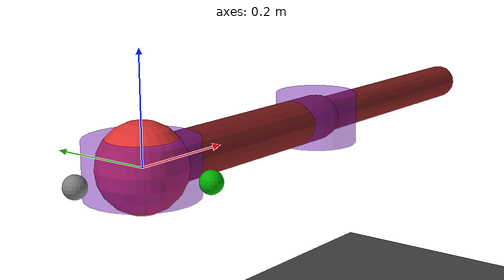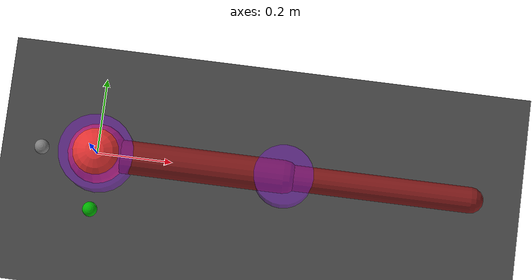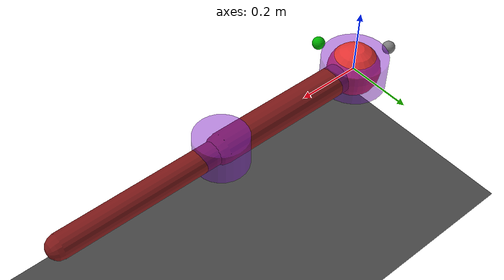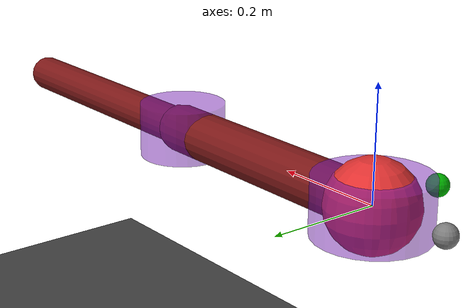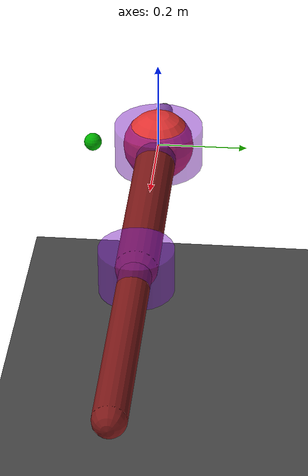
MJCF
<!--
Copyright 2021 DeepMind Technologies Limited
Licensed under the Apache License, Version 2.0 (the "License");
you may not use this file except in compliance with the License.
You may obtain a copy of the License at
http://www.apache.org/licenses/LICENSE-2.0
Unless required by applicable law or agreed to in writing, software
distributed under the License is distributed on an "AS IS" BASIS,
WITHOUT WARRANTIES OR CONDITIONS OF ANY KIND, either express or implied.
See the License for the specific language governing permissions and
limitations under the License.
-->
<mujoco model="2-link 6-muscle arm">

    <option timestep="0.005" iterations="50" solver="Newton" tolerance="1e-10"/>

    <size njmax="50" nconmax="10" nstack="200" nuserdata="200" nuser_actuator="6"/>

    <visual>
        <rgba haze=".3 .3 .3 1"/>
	<quality shadowsize="10000" offsamples="32" numslices="64" numquads="32"/>
    </visual>

	<!--gainprm[0] and gainprm[1] are not used from here but are written inside the corresponding xml file.-->
    <default>
        <joint type="hinge" pos="0 0 0" axis="0 0 1" limited="true" range="-120 120" damping="0.1"/>
        <general gaintype="user" dyntype="user" biastype="user" ctrllimited="true" ctrlrange="0 1" gainprm="0 0 500 200 0.5 1.6 0.5 1.3 1.2" biasprm="0 0 500 200 0.5 1.6 1.0 1.3 1.2"/>
    </default>

    <asset>
        <texture type="skybox" builtin="gradient" rgb1="0.6 0.6 0.6" rgb2="0 0 0" width="512" height="512"/>

        <texture name="texplane" type="2d" builtin="checker" rgb1=".25 .25 .25" rgb2=".3 .3 .3" width="512" height="512" mark="cross" markrgb=".8 .8 .8"/>

        <material name="matplane" reflectance="0.3" texture="texplane" texrepeat="1 1" texuniform="true"/>
    </asset>

    <worldbody>
        <geom name="floor" pos="0 0 -0.5" size="0 0 1" type="plane" material="matplane"/>

        <light directional="true" diffuse=".8 .8 .8" specular=".2 .2 .2" pos="0 0 5" dir="0 0 -1"/>

        <site name="s0" pos="-0.15 0 0" size="0.02"/>
        <site name="x0" pos="0 -0.15 0" size="0.02" rgba="0 .7 0 1" group="1"/>

        <body pos="0 0 0">
            <geom name="upper arm" type="capsule" size="0.045" fromto="0 0 0  0.5 0 0" rgba=".5 .1 .1 1"/>
            <joint name="shoulder"/>
            <geom name="shoulder" type="cylinder" pos="0 0 0" size=".1 .05" rgba=".5 .1 .8 .5" mass="0" group="1"/>

            <body pos="0.5 0 0">
                <geom name="forearm" type="capsule" size="0.035" fromto="0 0 0  0.5 0 0" rgba=".5 .1 .1 1" />
                <site name="endeffector" size="0.02" pos="0.5 0 0"/>
                <joint name="elbow"/>
		<geom name="elbow" type="cylinder" pos="0 0 0" size=".08 .05" rgba=".5 .1 .8 .5" mass="0" group="1"/>

            </body>
        </body>
        <body name="ball" pos="0 0 0">
            <joint armature="0" axis="1 0 0"  limited="false" name="target_xweight" pos="0
    0 0" range="-1 1" ref="0" stiffness="0" type="slide"/>
            <joint armature="0" axis="0 1 0"  limited="false" name="target_yweight" pos="0
    0 0" range="-1 1" ref="0" stiffness="0" type="slide"/>
            <site name="site_weight" size="0.02" pos="0.0 0 0"/>
            <geom conaffinity="0" contype="0" name="weight_geom" pos="0 0 0" rgba="0.9 0.2 0.2 1" size="0.08" type="sphere"/>
        </body>
        <body name="target" pos="0 0 0">
    <joint armature="0" axis="1 0 0" damping="100000" frictionloss="100000" limited="true" name="target_x" pos="0
    0 0" range="-1 1" ref="0" stiffness="0" type="slide"/>
    <joint armature="0" axis="0 1 0" damping="100000" frictionloss="100000" limited="true" name="target_y" pos="0
    0 0" range="-1 1" ref="0" stiffness="0" type="slide"/>
    <geom conaffinity="0" contype="0" name="target" pos="0 0 0" rgba="0.9 0.2 0.2 1" size=".02" type="sphere"/>
        </body>

    </worldbody>
 <tendon>
        <spatial limited="true" range="0 0.6" width="0.005">
            <site site="endeffector"/>
            <site site="site_weight"/>
        </spatial>
 </tendon>
    <actuator>
        <general name="shoulder" joint="shoulder"/>
        <general name="elbow" joint="elbow"/>
    </actuator>
</mujoco>
